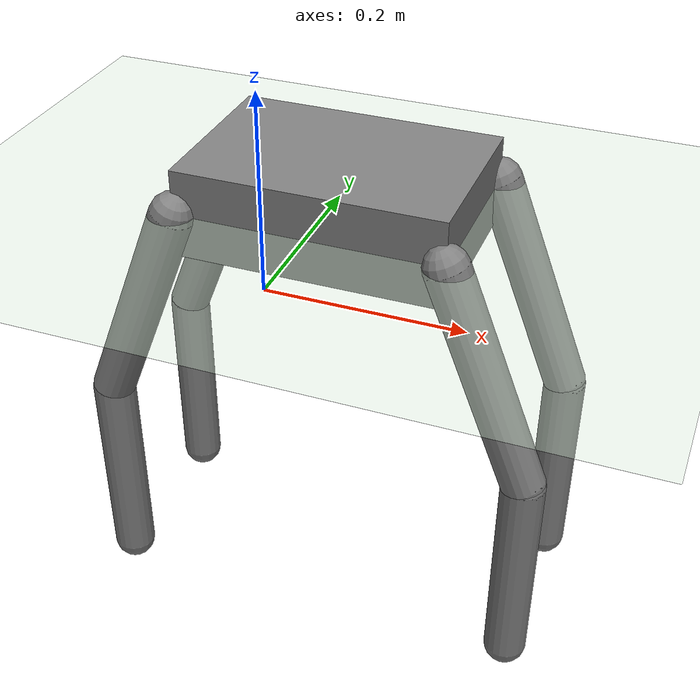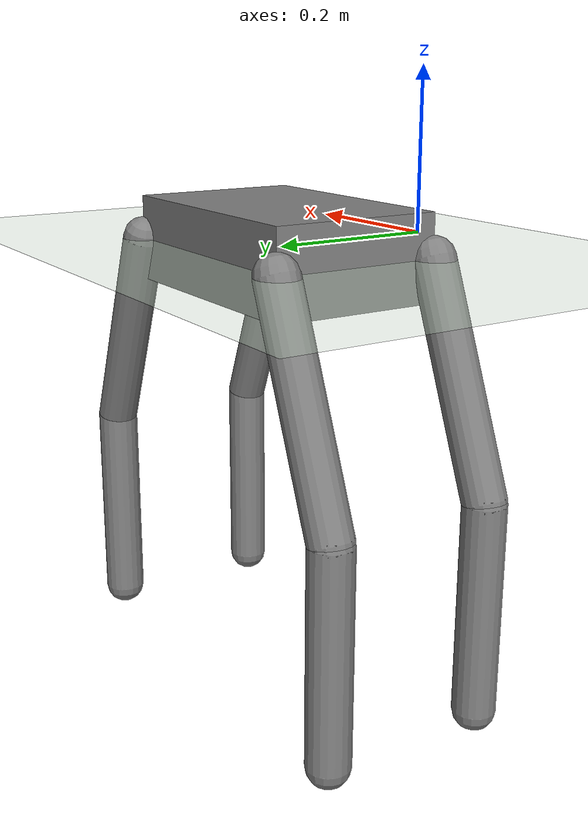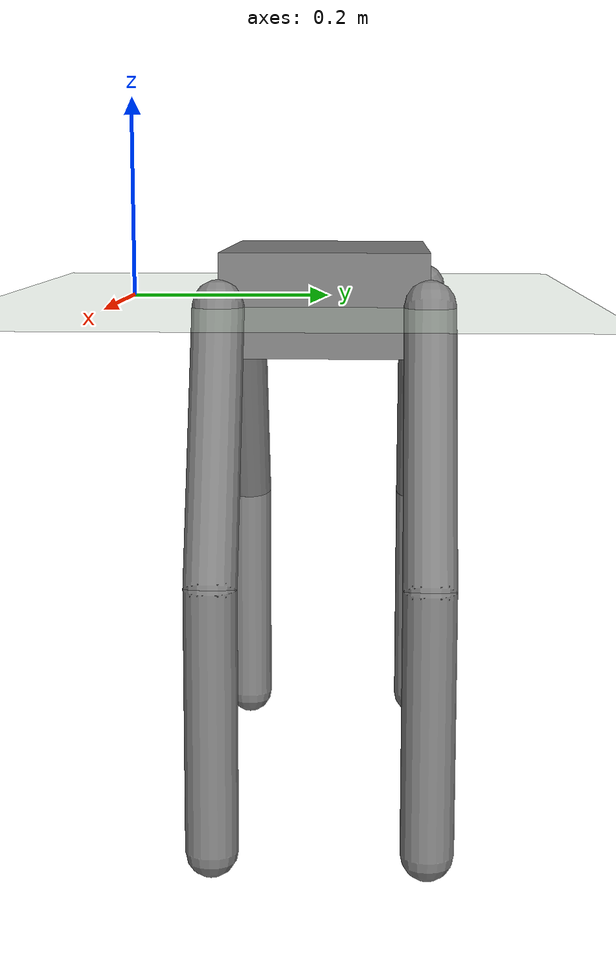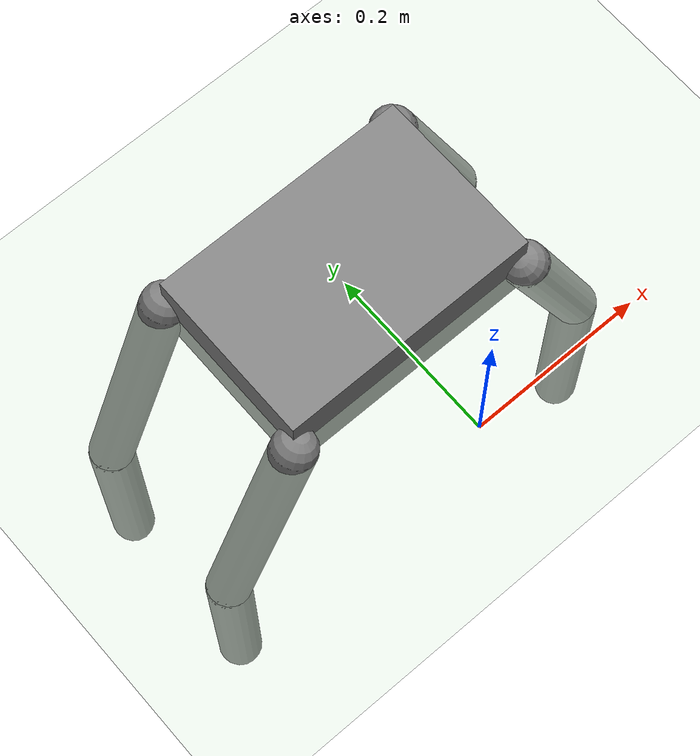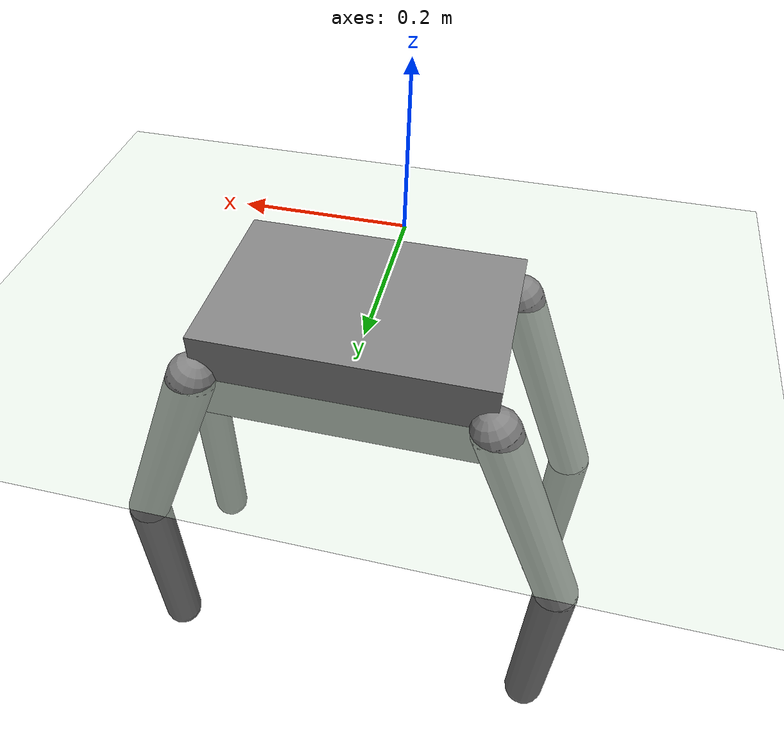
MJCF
<mujoco model="alice_laber">
    <option timestep="0.002" />

    <size memory="100M"/>

    <asset>
        <texture type="skybox" builtin="gradient" rgb1=".3 .5 .7" rgb2="0 0 0" width="512" height="512"/>
        <texture name="body" type="cube" builtin="flat" mark="cross" width="127" height="1278"
                rgb1="0.8 0.6 0.4" rgb2="0.8 0.6 0.4" markrgb="1 1 1" random="0.01"/>
        <material name="body" texture="body" texuniform="true" rgba="0.8 0.6 .4 1"/>
        <texture name="grid" type="2d" builtin="checker" width="512" height="512" rgb1=".1 .2 .3" rgb2=".2 .3 .4"/>
        <material name="grid" texture="grid" texrepeat="1 1" texuniform="true" reflectance=".2"/>
    </asset>

    <default>
        <motor ctrlrange="-1 1" ctrllimited="true"/>
        <default class="body">
        <geom type="capsule" condim="1" friction=".7" solimp=".9 .99 .003" solref=".015 1" material="body"/>
        <joint type="hinge" damping=".2" stiffness="1" armature=".01" limited="true" solimplimit="0 .99 .01"/>
        <default class="big_joint">
            <joint damping="5" stiffness="10"/>
            <default class="big_stiff_joint">
            <joint stiffness="20"/>
            </default>
        </default>
        </default>
    </default>

    <visual>
        <map force="0.1" zfar="30"/>
        <rgba haze="0.15 0.25 0.35 1"/>
        <quality shadowsize="4096"/>
        <global offwidth="800" offheight="800"/>
    </visual>

    <worldbody>
        <body name="torso" pos="0 0.2 0">
            <joint name="root_x" type="slide" axis="1 0 0" pos="0 0 0" />
            <joint name="root_y" type="slide" axis="0 1 0" pos="0 0 0" />
            <joint name="root_z" type="slide" axis="0 0 1" pos="0 0 0" />
            <joint name="root_pitch" type="hinge" axis="0 1 0" pos="0 0 0" />
            <joint name="root_roll" type="hinge" axis="1 0 0" pos="0 0 0" />
            <joint name="root_yaw" type="hinge" axis="0 0 1" pos="0 0 0" />

            <geom type="box" size="0.15 0.1 0.05" />

            <!-- Front right leg -->
            <body name="fr_leg1" pos="0.15 0.1 0">
                <geom type="capsule" fromto="0 0 0 0.1 0 -0.25" size="0.025" />
                <joint name="fr_leg1_pitch1" type="hinge" axis="0 1 0" pos="0 0 0" limited="true" range="-0.1 1.2" />
                <body name="fr_leg1_2" pos="0.1 0 -0.25">
                    <geom type="capsule" fromto="0 0 0 0 0 -0.25" size="0.025" />
                    <joint name="fr_leg1_pitch2" type="hinge" axis="0 1 0" pos="0 0 0" limited="true" range="-0.1 1.2"/>
                </body>
            </body>

            <!-- Front left leg -->
            <body name="fl_leg2" pos="-0.15 0.1 0">
                <geom type="capsule" fromto="0 0 0 -0.1 0 -0.25" size="0.025" />
                <joint name="fl_leg2_pitch1" type="hinge" axis="0 1 0" pos="0 0 0" limited="true" range="-0.1 1.2" />
                <body name="fl_leg2_2" pos="-0.1 0 -0.25">
                    <geom type="capsule" fromto="0 0 0 0 0 -0.25" size="0.025" />
                    <joint name="fl_leg2_pitch2" type="hinge" axis="0 1 0" pos="0 0 0" limited="true" range="-0.1 1.2"/>
                </body>
            </body>

            <!-- Back right leg -->
            <body name="br_leg3" pos="0.15 -0.1 0">
                <geom type="capsule" fromto="0 0 0 0.1 0 -0.25" size="0.025" />
                <joint name="br_leg3_pitch1" type="hinge" axis="0 1 0" pos="0 0 0" limited="true" range="-1.2 0.1" />
                <body name="br_leg3_2" pos="0.1 0 -0.25">
                    <geom type="capsule" fromto="0 0 0 0 0 -0.25" size="0.025" />
                    <joint name="br_leg3_pitch2" type="hinge" axis="0 1 0" pos="0 0 0" limited="true" range="-0.1 1.2"/>
                </body>
            </body>

            <!-- Back left leg -->
            <body name="bl_leg4" pos="-0.15 -0.1 0">
                <geom type="capsule" fromto="0 0 0 -0.1 0 -0.25" size="0.025" />
                <joint name="bl_leg4_pitch1" type="hinge" axis="0 1 0" pos="0 0 0" limited="true" range="-1.2 0.1" />
                <body name="bl_leg4_2" pos="-0.1 0 -0.25">
                    <geom type="capsule" fromto="0 0 0 0 0 -0.25" size="0.025" />
                    <joint name="bl_leg4_pitch2" type="hinge" axis="0 1 0" pos="0 0 0" limited="true" range="-0.1 1.2"/>
                </body>
            </body>
        </body>

        <!-- Ground plane -->
        <geom type="plane" size="10 10 0.1" rgba="0.8 0.9 0.8 1" />

        <!-- Lighting and camera settings -->
        <light name="light1" pos="0 0 5" />
        <camera name="main" pos="2 2 2" xyaxes="-0.707 -0.707 0  0.707 -0.707 0" />
    </worldbody>

    <actuator>
        <motor joint="fr_leg1_pitch1" />
        <motor joint="fr_leg1_pitch2" />
        <motor joint="fl_leg2_pitch1" />
        <motor joint="fl_leg2_pitch2" />
        <motor joint="br_leg3_pitch1" />
        <motor joint="br_leg3_pitch2" />
        <motor joint="bl_leg4_pitch1" />
        <motor joint="bl_leg4_pitch2" />
    </actuator>
</mujoco>
